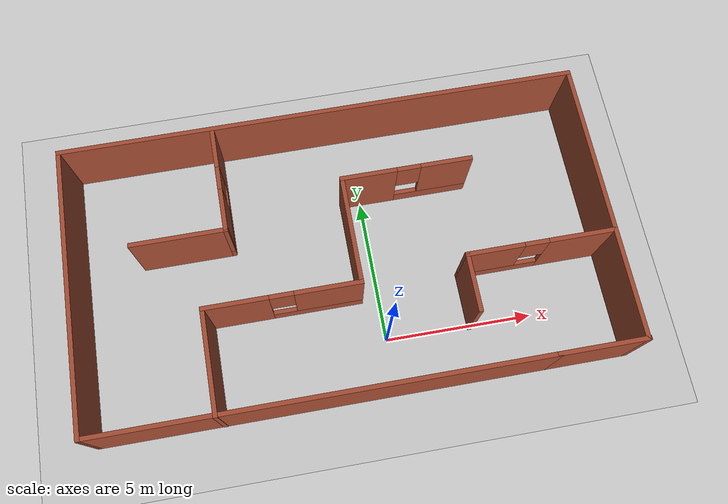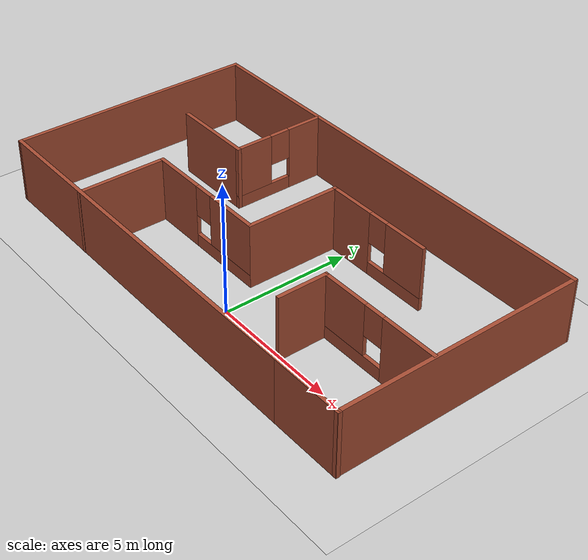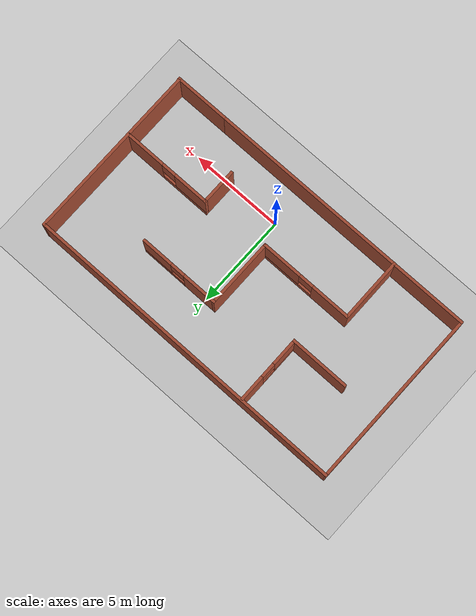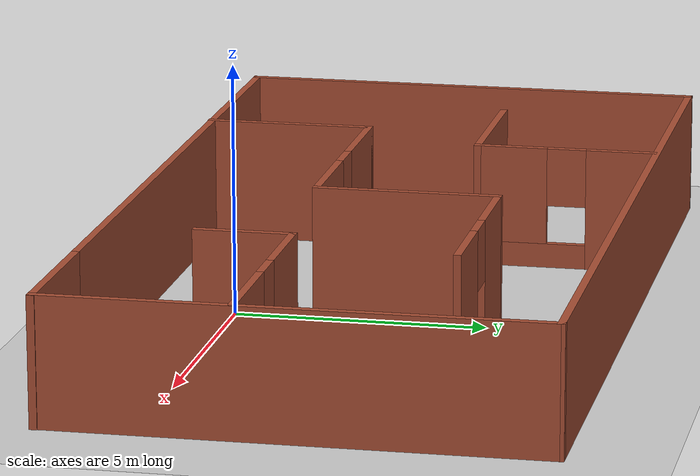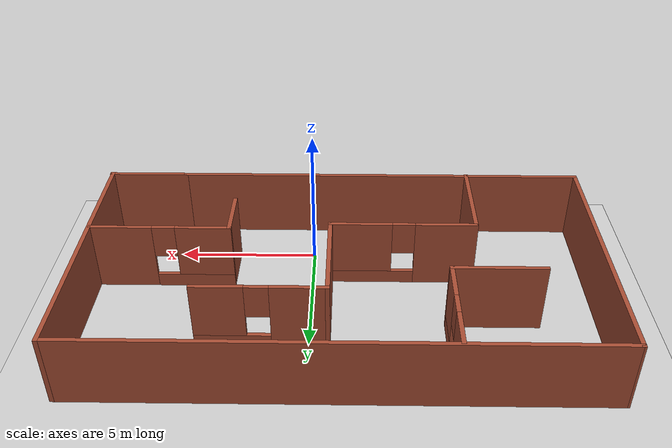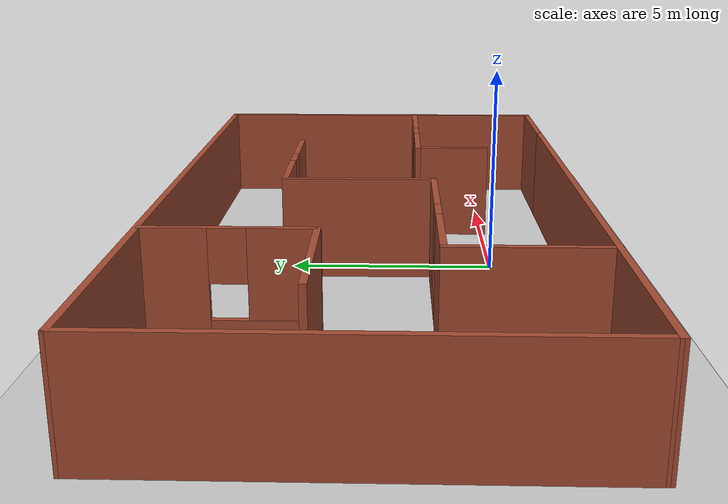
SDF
<sdf version="1.7">
 <world name="default">
  <light name="sun" type="directional">
   <pose>0 0 10 0 -0 0</pose>
   <diffuse>0.8 0.8 0.8 1</diffuse>
   <specular>0.2 0.2 0.2 1</specular>
   <attenuation>
    <range>1000</range>
    <constant>0.9</constant>
    <linear>0.01</linear>
    <quadratic>0.001</quadratic>
   </attenuation>
   <direction>-0.5 0.1 -0.9</direction>
   <spot><inner_angle>0</inner_angle><outer_angle>0</outer_angle><falloff>0</falloff></spot>
  </light>
  <model name="ground_plane">
   <static>1</static>
   <link name="link">
    <collision name="collision">
     <geometry><plane><normal>0 0 1</normal><size>100 100</size></plane></geometry>
     <surface>
      <contact><collide_bitmask>65535</collide_bitmask></contact>
      <friction><ode><mu>100</mu><mu2>50</mu2></ode></friction>
     </surface>
    </collision>
    <visual name="visual">
     <cast_shadows>0</cast_shadows>
     <geometry><plane><normal>0 0 1</normal><size>100 100</size></plane></geometry>
     <material>
      <script><uri>file://media/materials/scripts/gazebo.material</uri><name>Gazebo/Grey</name></script>
     </material>
    </visual>
   </link>
  </model>
  <gravity>0 0 -9.8</gravity>
  <magnetic_field>6e-06 2.3e-05 -4.2e-05</magnetic_field>
  <atmosphere type="adiabatic"/>
  <physics type="ode">
   <max_step_size>0.001</max_step_size>
   <real_time_factor>1</real_time_factor>
   <real_time_update_rate>1000</real_time_update_rate>
  </physics>
  <scene><ambient>0.4 0.4 0.4 1</ambient><background>0.7 0.7 0.7 1</background><shadows>1</shadows></scene>
  <spherical_coordinates>
   <surface_model>EARTH_WGS84</surface_model>
   <latitude_deg>0</latitude_deg>
   <longitude_deg>0</longitude_deg>
   <elevation>0</elevation>
   <heading_deg>0</heading_deg>
  </spherical_coordinates>
  <model name="Untitled">
   <pose>-1.0401 2.90876 -0.010247 0 -0 0</pose>
   <link name="Wall_0">
    <collision name="Wall_0_Collision">
     <geometry><box><size>15 0.15 2.5</size></box></geometry>
     <pose>0 0 1.25 0 -0 0</pose>
    </collision>
    <visual name="Wall_0_Visual">
     <pose>0 0 1.25 0 -0 0</pose>
     <geometry><box><size>15 0.15 2.5</size></box></geometry>
     <material>
      <script><uri>file://media/materials/scripts/gazebo.material</uri><name>Gazebo/Bricks</name></script>
      <ambient>1 1 1 1</ambient>
     </material>
     <meta><layer>0</layer></meta>
    </visual>
    <pose>-1.42056 -4.74679 0 0 -0 3.14159</pose>
   </link>
   <link name="Wall_1">
    <collision name="Wall_1_Collision">
     <geometry><box><size>9.65462 0.15 2.5</size></box></geometry>
     <pose>0 0 1.25 0 -0 0</pose>
    </collision>
    <visual name="Wall_1_Visual">
     <pose>0 0 1.25 0 -0 0</pose>
     <geometry><box><size>9.65462 0.15 2.5</size></box></geometry>
     <material>
      <script><uri>file://media/materials/scripts/gazebo.material</uri><name>Gazebo/Bricks</name></script>
      <ambient>1 1 1 1</ambient>
     </material>
     <meta><layer>0</layer></meta>
    </visual>
    <pose>-8.82269 0.005468 0 0 -0 1.56598</pose>
   </link>
   <link name="Wall_12">
    <pose>-3.63027 2.88382 0 0 -0 -1.5708</pose>
    <visual name="Wall_12_Visual_0">
     <pose>-1.15643 0 1.25 0 -0 0</pose>
     <geometry><box><size>1.43714 0.15 2.5</size></box></geometry>
     <material>
      <script><uri>file://media/materials/scripts/gazebo.material</uri><name>Gazebo/Bricks</name></script>
      <ambient>1 1 1 1</ambient>
     </material>
     <meta><layer>0</layer></meta>
    </visual>
    <collision name="Wall_12_Collision_0">
     <geometry><box><size>1.43714 0.15 2.5</size></box></geometry>
     <pose>-1.15643 0 1.25 0 -0 0</pose>
    </collision>
    <visual name="Wall_12_Visual_1">
     <pose>0.718572 0 0.25 0 -0 0</pose>
     <geometry><box><size>2.31286 0.15 0.5</size></box></geometry>
     <material>
      <script><uri>file://media/materials/scripts/gazebo.material</uri><name>Gazebo/Bricks</name></script>
      <ambient>1 1 1 1</ambient>
     </material>
     <meta><layer>0</layer></meta>
    </visual>
    <collision name="Wall_12_Collision_1">
     <geometry><box><size>2.31286 0.15 0.5</size></box></geometry>
     <pose>0.718572 0 0.25 0 -0 0</pose>
    </collision>
    <visual name="Wall_12_Visual_2">
     <pose>1.11857 0 1.5 0 -0 0</pose>
     <geometry><box><size>1.51286 0.15 2</size></box></geometry>
     <material>
      <script><uri>file://media/materials/scripts/gazebo.material</uri><name>Gazebo/Bricks</name></script>
      <ambient>1 1 1 1</ambient>
     </material>
     <meta><layer>0</layer></meta>
    </visual>
    <collision name="Wall_12_Collision_2">
     <geometry><box><size>1.51286 0.15 2</size></box></geometry>
     <pose>1.11857 0 1.5 0 -0 0</pose>
    </collision>
    <visual name="Wall_12_Visual_3">
     <pose>-0.037857 0 1.9 0 -0 0</pose>
     <geometry><box><size>0.8 0.15 1.2</size></box></geometry>
     <material>
      <script><uri>file://media/materials/scripts/gazebo.material</uri><name>Gazebo/Bricks</name></script>
      <ambient>1 1 1 1</ambient>
     </material>
     <meta><layer>0</layer></meta>
    </visual>
    <collision name="Wall_12_Collision_3">
     <geometry><box><size>0.8 0.15 1.2</size></box></geometry>
     <pose>-0.037857 0 1.9 0 -0 0</pose>
    </collision>
   </link>
   <link name="Wall_13">
    <collision name="Wall_13_Collision">
     <geometry><box><size>3.25 0.15 2.5</size></box></geometry>
     <pose>0 0 1.25 0 -0 0</pose>
    </collision>
    <visual name="Wall_13_Visual">
     <pose>0 0 1.25 0 -0 0</pose>
     <geometry><box><size>3.25 0.15 2.5</size></box></geometry>
     <material>
      <script><uri>file://media/materials/scripts/gazebo.material</uri><name>Gazebo/Bricks</name></script>
      <ambient>1 1 1 1</ambient>
     </material>
     <meta><layer>0</layer></meta>
    </visual>
    <pose>-5.18027 1.08383 0 0 -0 3.14159</pose>
   </link>
   <link name="Wall_15">
    <pose>6.33233 -1.10232 0 0 -0 3.14159</pose>
    <visual name="Wall_15_Visual_0">
     <pose>-1.38692 0 1.25 0 -0 0</pose>
     <geometry><box><size>2.22616 0.15 2.5</size></box></geometry>
     <material>
      <script><uri>file://media/materials/scripts/gazebo.material</uri><name>Gazebo/Bricks</name></script>
      <ambient>1 1 1 1</ambient>
     </material>
     <meta><layer>0</layer></meta>
    </visual>
    <collision name="Wall_15_Collision_0">
     <geometry><box><size>2.22616 0.15 2.5</size></box></geometry>
     <pose>-1.38692 0 1.25 0 -0 0</pose>
    </collision>
    <visual name="Wall_15_Visual_1">
     <pose>1.11308 0 0.25 0 -0 0</pose>
     <geometry><box><size>2.77384 0.15 0.5</size></box></geometry>
     <material>
      <script><uri>file://media/materials/scripts/gazebo.material</uri><name>Gazebo/Bricks</name></script>
      <ambient>1 1 1 1</ambient>
     </material>
     <meta><layer>0</layer></meta>
    </visual>
    <collision name="Wall_15_Collision_1">
     <geometry><box><size>2.77384 0.15 0.5</size></box></geometry>
     <pose>1.11308 0 0.25 0 -0 0</pose>
    </collision>
    <visual name="Wall_15_Visual_2">
     <pose>1.51308 0 1.5 0 -0 0</pose>
     <geometry><box><size>1.97384 0.15 2</size></box></geometry>
     <material>
      <script><uri>file://media/materials/scripts/gazebo.material</uri><name>Gazebo/Bricks</name></script>
      <ambient>1 1 1 1</ambient>
     </material>
     <meta><layer>0</layer></meta>
    </visual>
    <collision name="Wall_15_Collision_2">
     <geometry><box><size>1.97384 0.15 2</size></box></geometry>
     <pose>1.51308 0 1.5 0 -0 0</pose>
    </collision>
    <visual name="Wall_15_Visual_3">
     <pose>0.126163 0 1.9 0 -0 0</pose>
     <geometry><box><size>0.8 0.15 1.2</size></box></geometry>
     <material>
      <script><uri>file://media/materials/scripts/gazebo.material</uri><name>Gazebo/Bricks</name></script>
      <ambient>1 1 1 1</ambient>
     </material>
     <meta><layer>0</layer></meta>
    </visual>
    <collision name="Wall_15_Collision_3">
     <geometry><box><size>0.8 0.15 1.2</size></box></geometry>
     <pose>0.126163 0 1.9 0 -0 0</pose>
    </collision>
   </link>
   <link name="Wall_16">
    <collision name="Wall_16_Collision">
     <geometry><box><size>2 0.15 2.5</size></box></geometry>
     <pose>0 0 1.25 0 -0 0</pose>
    </collision>
    <visual name="Wall_16_Visual">
     <pose>0 0 1.25 0 -0 0</pose>
     <geometry><box><size>2 0.15 2.5</size></box></geometry>
     <material>
      <script><uri>file://media/materials/scripts/gazebo.material</uri><name>Gazebo/Bricks</name></script>
      <ambient>1 1 1 1</ambient>
     </material>
     <meta><layer>0</layer></meta>
    </visual>
    <pose>3.90733 -2.02732 0 0 -0 -1.5708</pose>
   </link>
   <link name="Wall_18">
    <collision name="Wall_18_Collision">
     <geometry><box><size>3.5 0.15 2.5</size></box></geometry>
     <pose>0 0 1.25 0 -0 0</pose>
    </collision>
    <visual name="Wall_18_Visual">
     <pose>0 0 1.25 0 -0 0</pose>
     <geometry><box><size>3.5 0.15 2.5</size></box></geometry>
     <material>
      <script><uri>file://media/materials/scripts/gazebo.material</uri><name>Gazebo/Bricks</name></script>
      <ambient>1 1 1 1</ambient>
     </material>
     <meta><layer>0</layer></meta>
    </visual>
    <pose>-4.7086 -3.08311 0 0 -0 1.5708</pose>
   </link>
   <link name="Wall_19">
    <pose>-2.1586 -1.40811 0 0 -0 0</pose>
    <visual name="Wall_19_Visual_0">
     <pose>-1.52507 0 1.25 0 -0 0</pose>
     <geometry><box><size>2.19986 0.15 2.5</size></box></geometry>
     <material>
      <script><uri>file://media/materials/scripts/gazebo.material</uri><name>Gazebo/Bricks</name></script>
      <ambient>1 1 1 1</ambient>
     </material>
     <meta><layer>0</layer></meta>
    </visual>
    <collision name="Wall_19_Collision_0">
     <geometry><box><size>2.19986 0.15 2.5</size></box></geometry>
     <pose>-1.52507 0 1.25 0 -0 0</pose>
    </collision>
    <visual name="Wall_19_Visual_1">
     <pose>1.09993 0 0.25 0 -0 0</pose>
     <geometry><box><size>3.05014 0.15 0.5</size></box></geometry>
     <material>
      <script><uri>file://media/materials/scripts/gazebo.material</uri><name>Gazebo/Bricks</name></script>
      <ambient>1 1 1 1</ambient>
     </material>
     <meta><layer>0</layer></meta>
    </visual>
    <collision name="Wall_19_Collision_1">
     <geometry><box><size>3.05014 0.15 0.5</size></box></geometry>
     <pose>1.09993 0 0.25 0 -0 0</pose>
    </collision>
    <visual name="Wall_19_Visual_2">
     <pose>1.49993 0 1.5 0 -0 0</pose>
     <geometry><box><size>2.25014 0.15 2</size></box></geometry>
     <material>
      <script><uri>file://media/materials/scripts/gazebo.material</uri><name>Gazebo/Bricks</name></script>
      <ambient>1 1 1 1</ambient>
     </material>
     <meta><layer>0</layer></meta>
    </visual>
    <collision name="Wall_19_Collision_2">
     <geometry><box><size>2.25014 0.15 2</size></box></geometry>
     <pose>1.49993 0 1.5 0 -0 0</pose>
    </collision>
    <visual name="Wall_19_Visual_3">
     <pose>-0.025138 0 1.9 0 -0 0</pose>
     <geometry><box><size>0.8 0.15 1.2</size></box></geometry>
     <material>
      <script><uri>file://media/materials/scripts/gazebo.material</uri><name>Gazebo/Bricks</name></script>
      <ambient>1 1 1 1</ambient>
     </material>
     <meta><layer>0</layer></meta>
    </visual>
    <collision name="Wall_19_Collision_3">
     <geometry><box><size>0.8 0.15 1.2</size></box></geometry>
     <pose>-0.025138 0 1.9 0 -0 0</pose>
    </collision>
   </link>
   <link name="Wall_2">
    <collision name="Wall_2_Collision">
     <geometry><box><size>17.75 0.15 2.5</size></box></geometry>
     <pose>0 0 1.25 0 -0 0</pose>
    </collision>
    <visual name="Wall_2_Visual">
     <pose>0 0 1.25 0 -0 0</pose>
     <geometry><box><size>17.75 0.15 2.5</size></box></geometry>
     <material>
      <script><uri>file://media/materials/scripts/gazebo.material</uri><name>Gazebo/Bricks</name></script>
      <ambient>1 1 1 1</ambient>
     </material>
     <meta><layer>0</layer></meta>
    </visual>
    <pose>0.00018 4.75772 0 0 -0 0</pose>
   </link>
   <link name="Wall_20">
    <collision name="Wall_20_Collision">
     <geometry><box><size>3.75 0.15 2.5</size></box></geometry>
     <pose>0 0 1.25 0 -0 0</pose>
    </collision>
    <visual name="Wall_20_Visual">
     <pose>0 0 1.25 0 -0 0</pose>
     <geometry><box><size>3.75 0.15 2.5</size></box></geometry>
     <material>
      <script><uri>file://media/materials/scripts/gazebo.material</uri><name>Gazebo/Bricks</name></script>
      <ambient>1 1 1 1</ambient>
     </material>
     <meta><layer>0</layer></meta>
    </visual>
    <pose>0.391401 0.391892 0 0 -0 1.5708</pose>
   </link>
   <link name="Wall_21">
    <pose>2.5664 2.19189 0 0 -0 0</pose>
    <visual name="Wall_21_Visual_0">
     <pose>-1.28041 0 1.25 0 -0 0</pose>
     <geometry><box><size>1.93918 0.15 2.5</size></box></geometry>
     <material>
      <script><uri>file://media/materials/scripts/gazebo.material</uri><name>Gazebo/Bricks</name></script>
      <ambient>1 1 1 1</ambient>
     </material>
     <meta><layer>0</layer></meta>
    </visual>
    <collision name="Wall_21_Collision_0">
     <geometry><box><size>1.93918 0.15 2.5</size></box></geometry>
     <pose>-1.28041 0 1.25 0 -0 0</pose>
    </collision>
    <visual name="Wall_21_Visual_1">
     <pose>0.969591 0 0.25 0 -0 0</pose>
     <geometry><box><size>2.56082 0.15 0.5</size></box></geometry>
     <material>
      <script><uri>file://media/materials/scripts/gazebo.material</uri><name>Gazebo/Bricks</name></script>
      <ambient>1 1 1 1</ambient>
     </material>
     <meta><layer>0</layer></meta>
    </visual>
    <collision name="Wall_21_Collision_1">
     <geometry><box><size>2.56082 0.15 0.5</size></box></geometry>
     <pose>0.969591 0 0.25 0 -0 0</pose>
    </collision>
    <visual name="Wall_21_Visual_2">
     <pose>1.36959 0 1.5 0 -0 0</pose>
     <geometry><box><size>1.76082 0.15 2</size></box></geometry>
     <material>
      <script><uri>file://media/materials/scripts/gazebo.material</uri><name>Gazebo/Bricks</name></script>
      <ambient>1 1 1 1</ambient>
     </material>
     <meta><layer>0</layer></meta>
    </visual>
    <collision name="Wall_21_Collision_2">
     <geometry><box><size>1.76082 0.15 2</size></box></geometry>
     <pose>1.36959 0 1.5 0 -0 0</pose>
    </collision>
    <visual name="Wall_21_Visual_3">
     <pose>0.089182 0 1.9 0 -0 0</pose>
     <geometry><box><size>0.8 0.15 1.2</size></box></geometry>
     <material>
      <script><uri>file://media/materials/scripts/gazebo.material</uri><name>Gazebo/Bricks</name></script>
      <ambient>1 1 1 1</ambient>
     </material>
     <meta><layer>0</layer></meta>
    </visual>
    <collision name="Wall_21_Collision_3">
     <geometry><box><size>0.8 0.15 1.2</size></box></geometry>
     <pose>0.089182 0 1.9 0 -0 0</pose>
    </collision>
   </link>
   <link name="Wall_3">
    <collision name="Wall_3_Collision">
     <geometry><box><size>9.65495 0.15 2.5</size></box></geometry>
     <pose>0 0 1.25 0 -0 0</pose>
    </collision>
    <visual name="Wall_3_Visual">
     <pose>0 0 1.25 0 -0 0</pose>
     <geometry><box><size>9.65495 0.15 2.5</size></box></geometry>
     <material>
      <script><uri>file://media/materials/scripts/gazebo.material</uri><name>Gazebo/Bricks</name></script>
      <ambient>1 1 1 1</ambient>
     </material>
     <meta><layer>0</layer></meta>
    </visual>
    <pose>8.81161 0.005468 0 0 -0 -1.56839</pose>
   </link>
   <link name="Wall_4">
    <collision name="Wall_4_Collision">
     <geometry><box><size>3 0.15 2.5</size></box></geometry>
     <pose>0 0 1.25 0 -0 0</pose>
    </collision>
    <visual name="Wall_4_Visual">
     <pose>0 0 1.25 0 -0 0</pose>
     <geometry><box><size>3 0.15 2.5</size></box></geometry>
     <material>
      <script><uri>file://media/materials/scripts/gazebo.material</uri><name>Gazebo/Bricks</name></script>
      <ambient>1 1 1 1</ambient>
     </material>
     <meta><layer>0</layer></meta>
    </visual>
    <pose>7.42092 -4.74679 0 0 -0 3.14159</pose>
   </link>
   <static>1</static>
  </model>
 </world>
</sdf>
